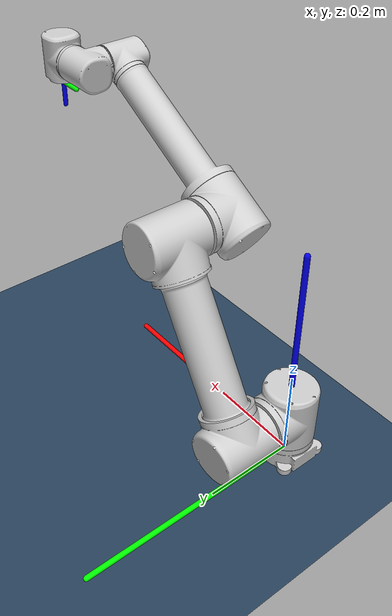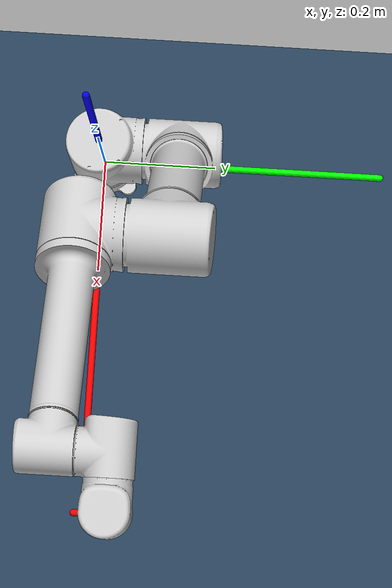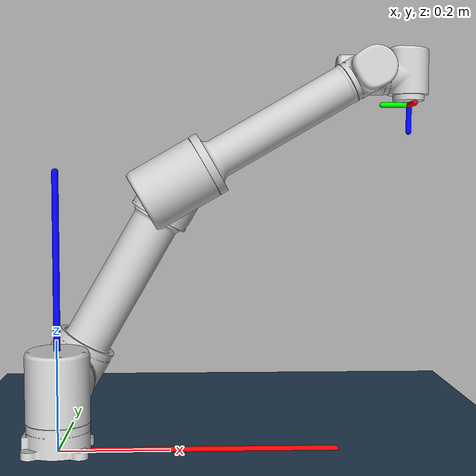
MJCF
<mujoco model="7dof_robot">
    <compiler angle="radian"/>
    <option timestep="0.01" gravity="0 0 0"/>

    <asset>
        <mesh name="base_mesh" file="base.stl" scale="0.001 0.001 0.001"/>
        <mesh name="motor110_mesh" file="motor110.stl" scale="0.001 0.001 0.001"/>
        <mesh name="motor70_mesh" file="motor70.stl" scale="0.001 0.001 0.001"/>
        <mesh name="link2_mesh" file="link2.stl" scale="0.001 0.001 0.001"/>
        <mesh name="link3_mesh" file="link3.stl" scale="0.001 0.001 0.001"/>
    </asset>

    <asset>
        <texture name="grid" type="2d" builtin="checker" rgb1=".1 .2 .3"
         rgb2=".2 .3 .4" width="300" height="300" mark="none"/>
        <material name="grid" texture="grid" texrepeat="1 1"
         texuniform="true" reflectance=".2"/>
      </asset>

    <worldbody>

        <!-- Ground plane -->
        <light name="light" pos="0 0 20"/>
        <geom name="ground" type="plane" pos="0 0 0" size="5 5 .1" material="grid"/>

        <!-- Robot Base -->
        <body name="base" pos="0 0 0">
            <geom type="capsule" fromto="0 0 0  0.5 0 0" size="0.006" rgba="1 0 0 1"/>
            <geom type="capsule" fromto="0 0 0  0 0.5 0" size="0.006" rgba="0 1 0 1"/>
            <geom type="capsule" fromto="0 0 0  0 0 0.5" size="0.006" rgba="0 0 1 1"/>
            <geom type="mesh" mesh="base_mesh" rgba="0.8 0.8 0.8 1" euler="0 0 3.1416"/>

            <!-- Link 1 -->
            <body name="link1" pos="-0.00000361 -0.00000271 0.0383" euler="0 0 0">
                <joint name="joint1" type="hinge" axis="0 0 1" limited="true" range="-3.1416 3.1416"/>
                <geom type="mesh" mesh="motor110_mesh" rgba="0.8 0.8 0.8 1" pos="0 0 0.074" euler = "0 0 0"/>

                <!-- Link 2 -->
                <body name="link2" pos="0 0.06 0.074" euler="1.5708 0 -0.5236"> <!-- initial rotation -30deg-->
                    <joint name="joint2" type="hinge" axis="0 0 1" limited="true" range="-3.1416 3.1416"/>
                    <geom type="mesh" mesh="motor110_mesh" rgba="0.8 0.8 0.8 1" pos="0 0 -0.08" euler = "0 3.1416 0"/>
                    <geom type="mesh" mesh="link2_mesh" rgba="0.8 0.8 0.8 1" pos="0 0.36 -0.08" euler = "0 0 0"/>
                    <geom type="mesh" mesh="motor110_mesh" rgba="0.8 0.8 0.8 1" pos="0 0.425 -0.08" euler = "3.1416 0 0"/>

                    <!-- Link 3 -->
                    <body name="link3" pos="0 0.425 0" euler="0 0 -0.5236"> <!-- initial rotation -30deg-->
                        <joint name="joint3" type="hinge" axis="0 0 1" limited="true" range="-3.1416 3.1416"/>
                        <geom type="mesh" mesh="motor110_mesh" rgba="0.8 0.8 0.8 1" pos="0 0 0.06" euler = "1.5708 0 3.1416"/>

                        <!-- Link 4 -->
                        <body name="link4" pos="0 0.074 0.06" euler="-1.5708 0 0">
                            <joint name="joint4" type="hinge" axis="0 0 1" limited="true" range="-3.1416 3.1416"/>
                            <geom type="mesh" mesh="link3_mesh" rgba="0.8 0.8 0.8 1" pos="0 0 -0.015" euler = "-1.5708 0 0"/>
                            <geom type="mesh" mesh="motor70_mesh" rgba="0.8 0.8 0.8 1" pos="0 0 0.327" euler = "1.5708 3.1416 0"/>

                            <!-- Link 5 -->
                            <body name="link5" pos="0 0.04 0.327" euler="-1.5708 0 0.5236"> <!-- initial rotation 30deg-->
                                <joint name="joint5" type="hinge" axis="0 0 1" limited="true" range="-3.1416 3.1416"/>
                                <geom type="mesh" mesh="motor70_mesh" rgba="0.8 0.8 0.8 1" pos="0 0 0.047" euler = "1.5708 0 0"/>

                                <!-- Link 6 -->
                                <body name="link6" pos="0 -0.04 0.046" euler="1.5708 0 -1.5708"> <!-- initial rotation 90deg-->
                                    <joint name="joint6" type="hinge" axis="0 0 1" limited="true" range="-3.1416 3.1416"/>
                                    <geom type="mesh" mesh="motor70_mesh" rgba="0.8 0.8 0.8 1" pos="0 0 0.045" euler = "1.5708 3.1416 0"/>
                                    <geom type="sphere" size="0.02" rgba="1 0 0 1"/>

                                    <!-- Link 7 -->
                                    <body name="link7" pos="0 0.0375 0.046" euler="-1.5708 0 0">
                                        <joint name="joint7" type="hinge" axis="0 0 1" limited="true" range="-3.1416 3.1416"/>
                                        <body name="ee" pos="0 0 0.0175">
                                            <geom type="capsule" fromto="0 0 0  0.05 0 0" size="0.005" rgba="1 0 0 1"/>
                                            <geom type="capsule" fromto="0 0 0  0 0.05 0" size="0.005" rgba="0 1 0 1"/>
                                            <geom type="capsule" fromto="0 0 0  0 0 0.05" size="0.005" rgba="0 0 1 1"/>
                                        </body>

                                    </body>
                                </body>
                            </body>
                        </body>
                    </body>
                </body>
            </body>

        </body>

    </worldbody>

    <sensor>
        <framepos name="ee_pos" objtype="body" objname="ee"/>
        <framequat name="ee_quat" objtype="body" objname="ee"/>
    </sensor>

</mujoco>
